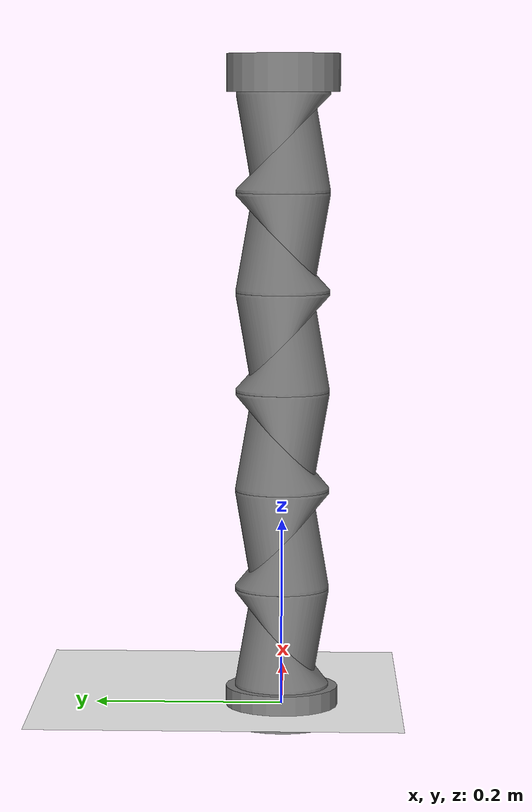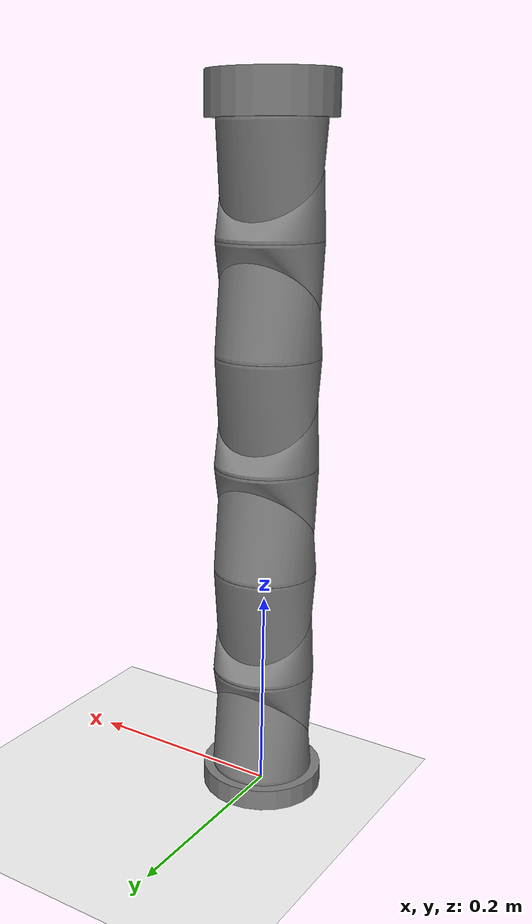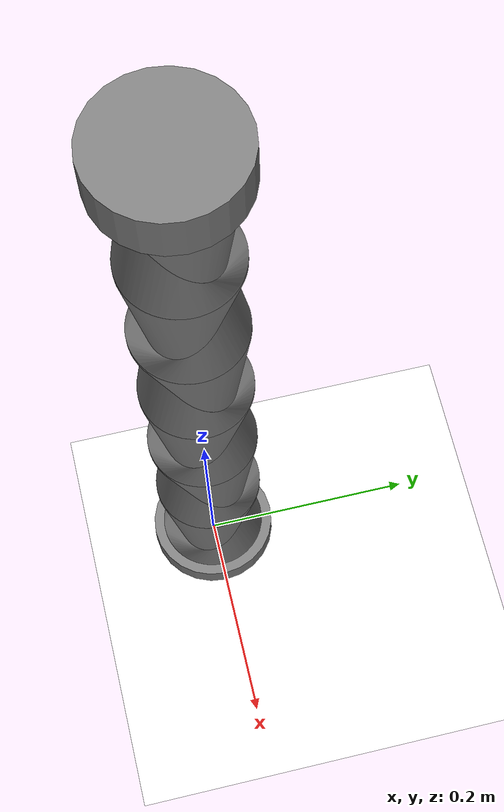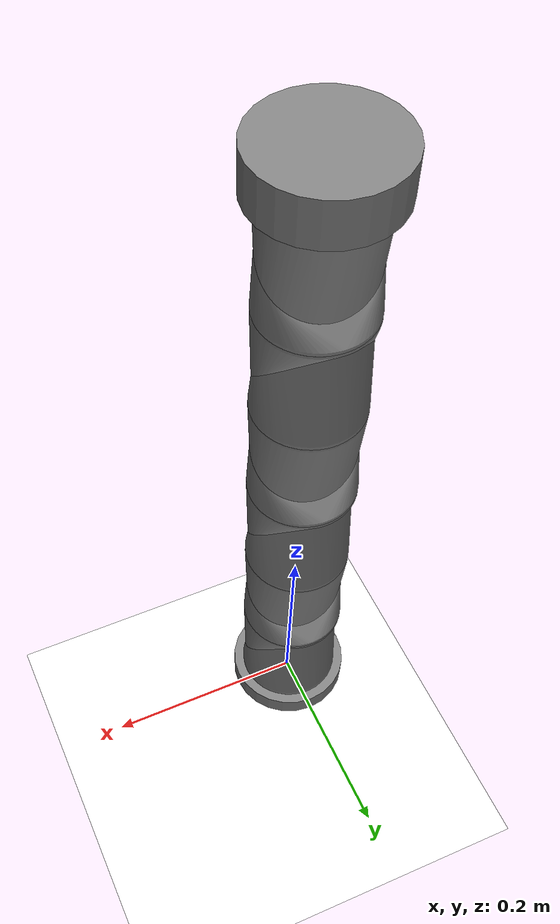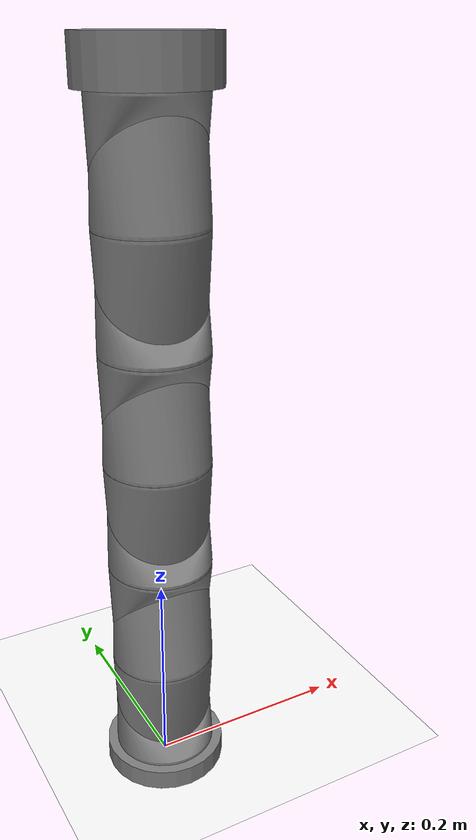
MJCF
<?xml version='1.0' encoding='UTF-8'?>
<mujoco model="zbot">
    <compiler inertiafromgeom="true" angle="degree" autolimits="true" fusestatic="false" />
    <default>
        <geom density="670" />
        <default class="coliision">
            <geom contype="1" conaffinity="0" group="4" type="mesh" mesh="mb" />
            <default class="coliision_a">
                <geom mesh="ma" />
            </default>

            <default class="coliision_b">
                <geom mesh="mb" />
            </default>
        </default>
        <default class="visual">
            <geom contype="0" conaffinity="0" group="1" type="mesh" mesh="mb" />
            <default class="visual_a">
                <geom mesh="ma" />
            </default>

            <default class="visual_b">
                <geom mesh="mb" />
            </default>
        </default>
        <joint range="-180 180" limited="true" />
    </default>

    <asset>
        <mesh name="ma" file="ma.obj" />
        <mesh name="mb" file="mb.obj" />
        <material name="floor" reflectance=".1" />
    </asset>

    <worldbody>
        <geom type="plane" size="5 5 .01" rgba="1 1 1 1" material="floor" contype="127" conaffinity="127" />
        <body name="body_0" pos="0 0 0.02" euler="0 0 0">
            <freejoint />
            <geom class="visual_a" pos="0 0 0" />
            <geom type="cylinder" size="0.060 0.02" pos="0.0 0.0 -0.02" density="400" contype="0" conaffinity="0" group="1" />

            <body name="body_1" pos="0 0 0.106">
                <joint name="joint_0" type="hinge" pos="0 0 -0.053" axis="0 -1 1" />
                <geom class="visual_b" pos="0 0 -0.106" />
                <geom class="visual_a" pos="0 0 0.0" euler="0 0 180" />
                <body name="body_2" pos="0 0 0.106" euler="0 0 180">
                    <joint name="joint_1" type="hinge" pos="0 0 -0.053" axis="0 -1 1" />
                    <geom class="visual_b" pos="0 0 -0.106" />
                    <geom class="visual_a" pos="0 0 0.0" euler="0 0 180" />
                    <body name="body_3" pos="0 0 0.106" euler="0 0 180">
                        <joint name="joint_2" type="hinge" pos="0 0 -0.053" axis="0 -1 1" />
                        <geom class="visual_b" pos="0 0 -0.106" />
                        <geom class="visual_a" pos="0 0 0.0" euler="0 0 180" />
                        <body name="body_4" pos="0 0 0.106" euler="0 0 180">
                            <joint name="joint_3" type="hinge" pos="0 0 -0.053" axis="0 -1 1" />
                            <geom class="visual_b" pos="0 0 -0.106" />
                            <geom class="visual_a" pos="0 0 0.0" euler="0 0 180" />
                            <body name="body_5" pos="0 0 0.106" euler="0 0 180">
                                <joint name="joint_4" type="hinge" pos="0 0 -0.053" axis="0 -1 1" />
                                <geom class="visual_b" pos="0 0 -0.106" />
                                <geom class="visual_a" pos="0 0 0.0" euler="0 0 180" />
                                <body name="body_6" pos="0 0 0.106" euler="0 0 180">
                                    <joint name="joint_5" type="hinge" pos="0 0 -0.053" axis="0 -1 1" />
                                    <geom class="visual_b" pos="0 0 -0.106" />
                                    <geom type="cylinder" size="0.060 0.02" pos="0.0 0.0 0.02" density="400" contype="0" conaffinity="0" group="1" />

                                </body>
                            </body>
                        </body>
                    </body>
                </body>
            </body>
        </body>
    </worldbody>
<option timestep="0.0166" gravity="0 0 -9.81" integrator="implicitfast" /><actuator><position name="joint_0" joint="joint_0" kp="10" forcelimited="false" ctrllimited="false" /><position name="joint_1" joint="joint_1" kp="10" forcelimited="false" ctrllimited="false" /><position name="joint_2" joint="joint_2" kp="10" forcelimited="false" ctrllimited="false" /><position name="joint_3" joint="joint_3" kp="10" forcelimited="false" ctrllimited="false" /><position name="joint_4" joint="joint_4" kp="10" forcelimited="false" ctrllimited="false" /><position name="joint_5" joint="joint_5" kp="10" forcelimited="false" ctrllimited="false" /></actuator><sensor><framequat name="rl_base_quat" objtype="xbody" objname="body_3" /><frameangvel name="rl_base_angvel" objtype="xbody" objname="body_3" /><framepos name="rl_base_pos" objtype="xbody" objname="body_3" /><framelinvel name="rl_base_linvel" objtype="xbody" objname="body_3" /></sensor><keyframe><key name="initial" qpos="0.0987677127122879 0.0020342152565717697 0.0403452031314373 0.9999802112579346 -0.002577706705778837 -7.0682476689398754e-06 0.005743545014411211 0.0 -0.7853981852531433 1.5707963705062866 -1.5707963705062866 0.7853981852531433 0.0" ctrl="0.0 -0.7853981852531433 1.5707963705062866 -1.5707963705062866 0.7853981852531433 0.0" /></keyframe></mujoco>
